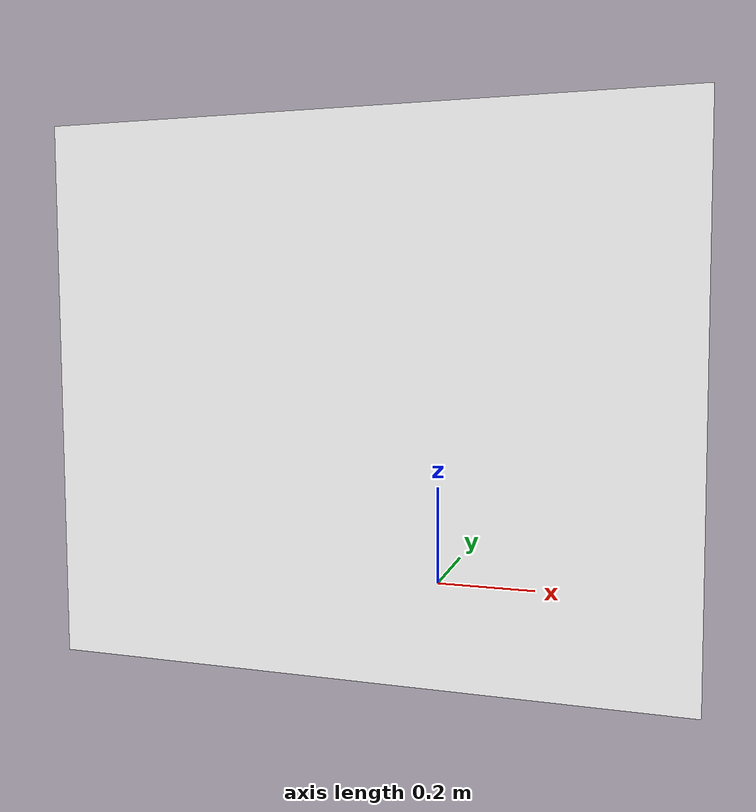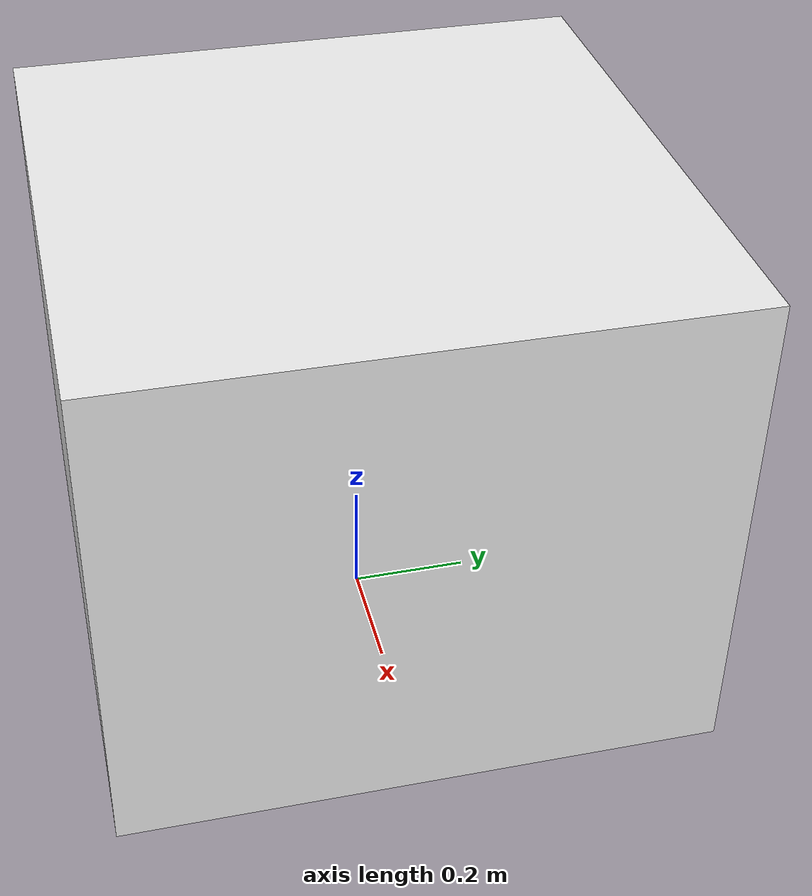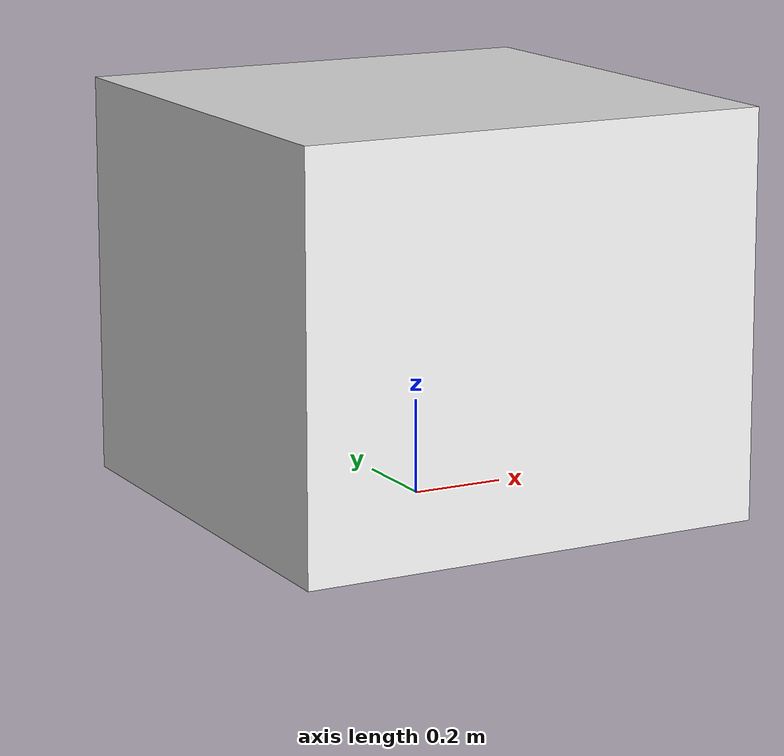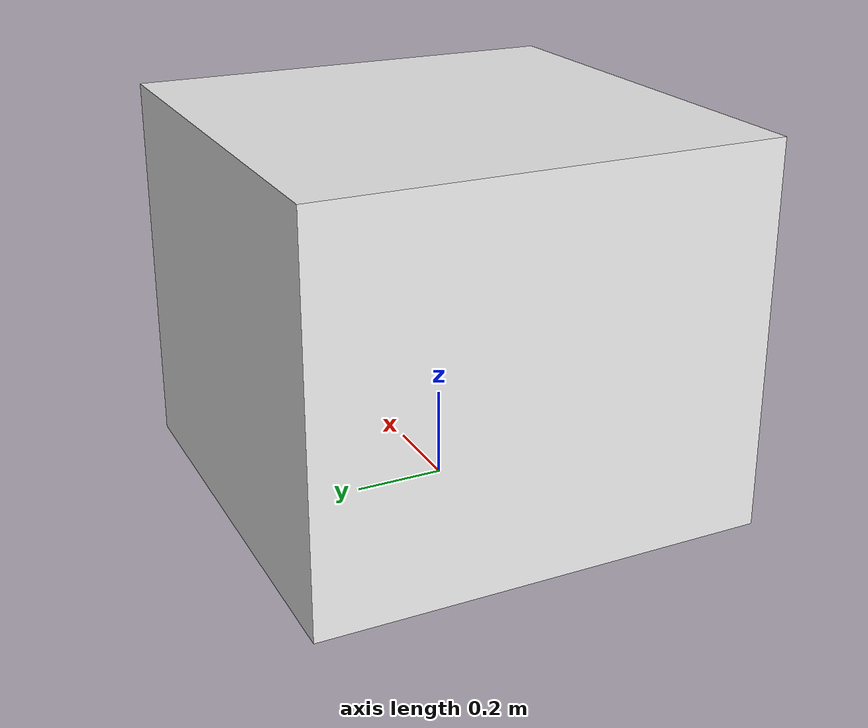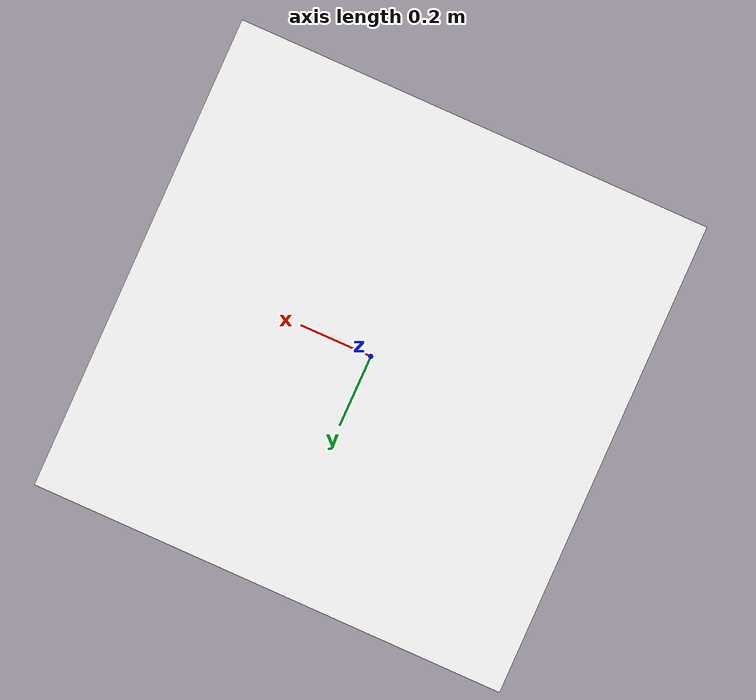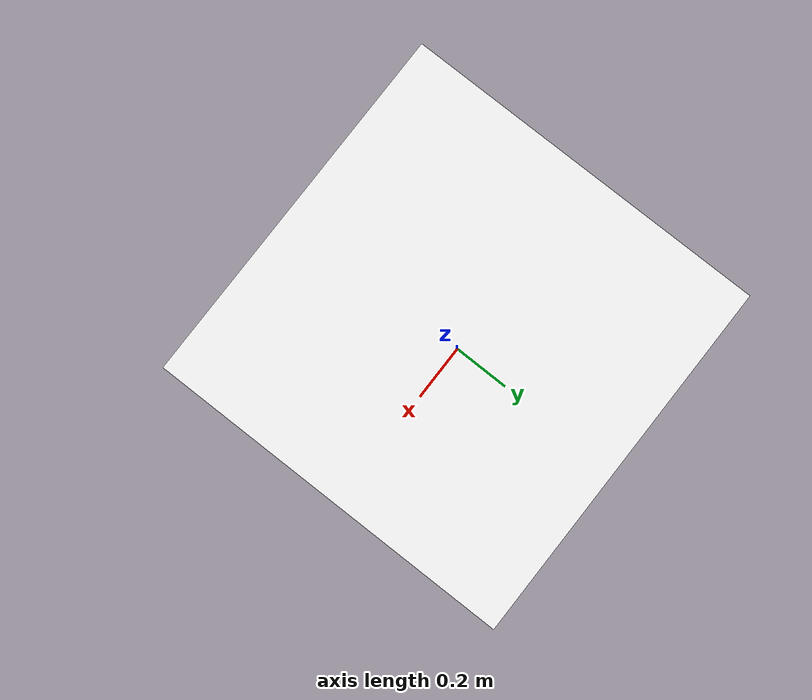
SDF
<?xml version='1.0'?>
<sdf version='1.6'>
    <model name='b_kitchen_isle'>
        <static>false</static>

        <pose>0 0 0 0 0 0</pose>

        <link name='link'>
            <pose>0 0 0.425 0 0 0</pose>

            <gravity>false</gravity>

           <collision name='collision'>
               <geometry>
                   <box>
                        <size>1.0 1.0 0.85</size>
                    </box>
               </geometry>
           </collision>

            <visual name='visual'>
                <geometry>
                   <box>
                        <size>1.0 1.0 0.85</size>
                    </box>
               </geometry>
               <material>
                    <script>
                        <name>Gazebo/White</name>
                        <uri>file://media/materials/scripts/gazebo.material</uri>
                    </script>
                </material>
            </visual>

        </link>
    </model>
</sdf>
